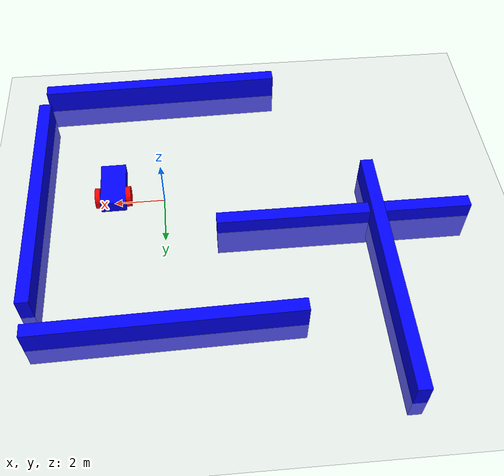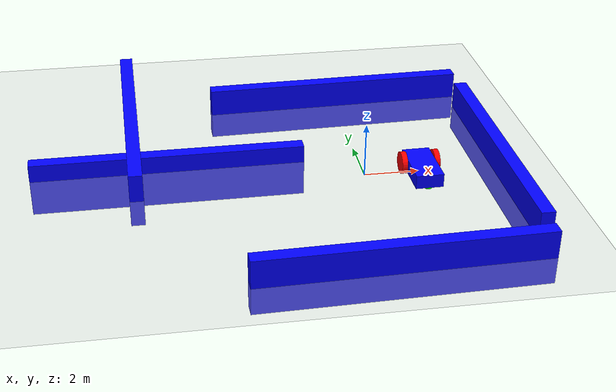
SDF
<sdf version="1.10">
 <world name="Moving_robot">
  <physics name="1ms" type="ignored">
   <max_step_size>0.001</max_step_size>
   <real_time_factor>1</real_time_factor>
   <real_time_update_rate>1000</real_time_update_rate>
  </physics>
  <plugin name="gz::sim::systems::Physics" filename="gz-sim-physics-system"/>
  <plugin name="gz::sim::systems::UserCommands" filename="gz-sim-user-commands-system"/>
  <plugin name="gz::sim::systems::SceneBroadcaster" filename="gz-sim-scene-broadcaster-system"/>
  <plugin name="gz::sim::systems::Imu" filename="gz-sim-imu-system"/>
  <plugin name="gz::sim::systems::Sensors" filename="gz-sim-sensors-system">
   <render_engine>ogre2</render_engine>
  </plugin>
  <plugin name="gz::sim::systems::TriggeredPublisher" filename="gz-sim-triggered-publisher-system">
   <input type="gz.msgs.Int32" topic="/keyboard/keypress"><match field="data">16777234</match></input>
   <output type="gz.msgs.Twist" topic="/cmd_vel">linear: {x: 0.0}, angular: {z: 0.5}</output>
  </plugin>
  <plugin name="gz::sim::systems::TriggeredPublisher" filename="gz-sim-triggered-publisher-system">
   <input type="gz.msgs.Int32" topic="/keyboard/keypress"><match field="data">16777235</match></input>
   <output type="gz.msgs.Twist" topic="/cmd_vel">linear: {x: 0.5}, angular: {z: 0.0}</output>
  </plugin>
  <plugin name="gz::sim::systems::TriggeredPublisher" filename="gz-sim-triggered-publisher-system">
   <input type="gz.msgs.Int32" topic="/keyboard/keypress"><match field="data">16777236</match></input>
   <output type="gz.msgs.Twist" topic="/cmd_vel">linear: {x: 0.0}, angular: {z: -0.5}</output>
  </plugin>
  <plugin name="gz::sim::systems::TriggeredPublisher" filename="gz-sim-triggered-publisher-system">
   <input type="gz.msgs.Int32" topic="/keyboard/keypress"><match field="data">16777237</match></input>
   <output type="gz.msgs.Twist" topic="/cmd_vel">linear: {x: -0.5}, angular: {z: 0.0}</output>
  </plugin>
  <gravity>0 0 -9.8000000000000007</gravity>
  <magnetic_field>5.5644999999999998e-06 2.2875799999999999e-05 -4.2388400000000002e-05</magnetic_field>
  <atmosphere type="adiabatic"/>
  <scene>
   <ambient>0.400000006 0.400000006 0.400000006 1</ambient>
   <background>0.699999988 0.699999988 0.699999988 1</background>
   <shadows>true</shadows>
  </scene>
  <model name="ground_plane">
   <static>true</static>
   <link name="link">
    <collision name="collision">
     <geometry><plane><normal>0 0 1</normal><size>1 1</size></plane></geometry>
    </collision>
    <visual name="visual">
     <geometry><plane><normal>0 0 1</normal><size>100 100</size></plane></geometry>
     <material>
      <ambient>0.800000012 0.800000012 0.800000012 1</ambient>
      <diffuse>0.800000012 0.800000012 0.800000012 1</diffuse>
      <specular>0.800000012 0.800000012 0.800000012 1</specular>
     </material>
    </visual>
    <inertial>
     <mass>1</mass>
     <inertia><ixx>1</ixx><ixy>0</ixy><ixz>0</ixz><iyy>1</iyy><iyz>0</iyz><izz>1</izz></inertia>
    </inertial>
   </link>
  </model>
  <model name="wall">
   <static>true</static>
   <pose>5 0 0 0 0 0</pose>
   <link name="box">
    <visual name="visual">
     <geometry><box><size>0.5 10 2</size></box></geometry>
     <material><ambient>0 0 1 1</ambient><diffuse>0 0 1 1</diffuse><specular>0 0 1 1</specular></material>
    </visual>
    <collision name="collision"><geometry><box><size>0.5 10 2</size></box></geometry></collision>
    <inertial>
     <mass>1</mass>
     <inertia><ixx>1</ixx><ixy>0</ixy><ixz>0</ixz><iyy>1</iyy><iyz>0</iyz><izz>1</izz></inertia>
    </inertial>
   </link>
  </model>
  <model name="wall5">
   <static>true</static>
   <pose>-8.2442197799682617 4.3869099617004395 0 0 0 0</pose>
   <link name="box">
    <visual name="visual">
     <geometry><box><size>0.5 10 2</size></box></geometry>
     <material><ambient>0 0 1 1</ambient><diffuse>0 0 1 1</diffuse><specular>0 0 1 1</specular></material>
    </visual>
    <collision name="collision"><geometry><box><size>0.5 10 2</size></box></geometry></collision>
    <inertial>
     <mass>1</mass>
     <inertia><ixx>1</ixx><ixy>0</ixy><ixz>0</ixz><iyy>1</iyy><iyz>0</iyz><izz>1</izz></inertia>
    </inertial>
   </link>
  </model>
  <model name="wall4">
   <static>true</static>
   <pose>-7.0035514831542969 1.5503436326980591 -0.36632499098777771 0 0 1.5731600067873759</pose>
   <link name="box">
    <visual name="visual">
     <geometry><box><size>0.5 10 2</size></box></geometry>
     <material><ambient>0 0 1 1</ambient><diffuse>0 0 1 1</diffuse><specular>0 0 1 1</specular></material>
    </visual>
    <collision name="collision"><geometry><box><size>0.5 10 2</size></box></geometry></collision>
    <inertial>
     <mass>1</mass>
     <inertia><ixx>1</ixx><ixy>0</ixy><ixz>0</ixz><iyy>1</iyy><iyz>0</iyz><izz>1</izz></inertia>
    </inertial>
   </link>
  </model>
  <model name="wall2">
   <static>true</static>
   <pose>0 -6 0 0 0 -1.5500000000000003</pose>
   <link name="box">
    <visual name="visual">
     <geometry><box><size>0.5 10 2</size></box></geometry>
     <material><ambient>0 0 1 1</ambient><diffuse>0 0 1 1</diffuse><specular>0 0 1 1</specular></material>
    </visual>
    <collision name="collision"><geometry><box><size>0.5 10 2</size></box></geometry></collision>
    <inertial>
     <mass>1</mass>
     <inertia><ixx>1</ixx><ixy>0</ixy><ixz>0</ixz><iyy>1</iyy><iyz>0</iyz><izz>1</izz></inertia>
    </inertial>
   </link>
  </model>
  <model name="wall3">
   <static>true</static>
   <pose>0 6 0 0 0 -1.5500000000000003</pose>
   <link name="box">
    <visual name="visual">
     <geometry><box><size>0.5 10 2</size></box></geometry>
     <material><ambient>0 0 1 1</ambient><diffuse>0 0 1 1</diffuse><specular>0 0 1 1</specular></material>
    </visual>
    <collision name="collision"><geometry><box><size>0.5 10 2</size></box></geometry></collision>
    <inertial>
     <mass>1</mass>
     <inertia><ixx>1</ixx><ixy>0</ixy><ixz>0</ixz><iyy>1</iyy><iyz>0</iyz><izz>1</izz></inertia>
    </inertial>
   </link>
  </model>
  <model name="vehicle_blue" canonical_link="chassis">
   <frame name="lidar_frame" attached_to="chassis"><pose>0.80000000000000004 0 0.5 0 0 0</pose></frame>
   <pose>2.0000000000000004 -1.1102230246251565e-16 0 0 0 -1.5600000000000009</pose>
   <link name="chassis">
    <sensor name="imu_sensor" type="imu">
     <topic>imu</topic>
     <update_rate>1</update_rate>
     <enable_metrics>false</enable_metrics>
     <imu>
      <orientation_reference_frame>
       <localization>CUSTOM</localization>
       <custom_rpy>0 0 0</custom_rpy>
       <grav_dir_x>1 0 0</grav_dir_x>
      </orientation_reference_frame>
      <angular_velocity>
       <x>
        <noise type="none">
         <mean>0</mean>
         <stddev>0</stddev>
         <bias_mean>0</bias_mean>
         <bias_stddev>0</bias_stddev>
         <dynamic_bias_stddev>0</dynamic_bias_stddev>
         <dynamic_bias_correlation_time>0</dynamic_bias_correlation_time>
         <precision>0</precision>
        </noise>
       </x>
       <y>
        <noise type="none">
         <mean>0</mean>
         <stddev>0</stddev>
         <bias_mean>0</bias_mean>
         <bias_stddev>0</bias_stddev>
         <dynamic_bias_stddev>0</dynamic_bias_stddev>
         <dynamic_bias_correlation_time>0</dynamic_bias_correlation_time>
         <precision>0</precision>
        </noise>
       </y>
       <z>
        <noise type="none">
         <mean>0</mean>
         <stddev>0</stddev>
         <bias_mean>0</bias_mean>
         <bias_stddev>0</bias_stddev>
         <dynamic_bias_stddev>0</dynamic_bias_stddev>
         <dynamic_bias_correlation_time>0</dynamic_bias_correlation_time>
         <precision>0</precision>
        </noise>
       </z>
      </angular_velocity>
      <linear_acceleration>
       <x>
        <noise type="none">
         <mean>0</mean>
         <stddev>0</stddev>
         <bias_mean>0</bias_mean>
         <bias_stddev>0</bias_stddev>
         <dynamic_bias_stddev>0</dynamic_bias_stddev>
         <dynamic_bias_correlation_time>0</dynamic_bias_correlation_time>
         <precision>0</precision>
        </noise>
       </x>
       <y>
        <noise type="none">
         <mean>0</mean>
         <stddev>0</stddev>
         <bias_mean>0</bias_mean>
         <bias_stddev>0</bias_stddev>
         <dynamic_bias_stddev>0</dynamic_bias_stddev>
         <dynamic_bias_correlation_time>0</dynamic_bias_correlation_time>
         <precision>0</precision>
        </noise>
       </y>
       <z>
        <noise type="none">
         <mean>0</mean>
         <stddev>0</stddev>
         <bias_mean>0</bias_mean>
         <bias_stddev>0</bias_stddev>
         <dynamic_bias_stddev>0</dynamic_bias_stddev>
         <dynamic_bias_correlation_time>0</dynamic_bias_correlation_time>
         <precision>0</precision>
        </noise>
       </z>
      </linear_acceleration>
      <enable_orientation>true</enable_orientation>
     </imu>
    </sensor>
    <sensor name="gpu_lidar" type="gpu_lidar">
     <pose>0.80000000000000004 0 0.5 0 0 0</pose>
     <topic>lidar</topic>
     <update_rate>10</update_rate>
     <enable_metrics>false</enable_metrics>
     <lidar>
      <scan>
       <horizontal>
        <samples>640</samples>
        <resolution>1</resolution>
        <min_angle>-1.396263</min_angle>
        <max_angle>1.396263</max_angle>
       </horizontal>
       <vertical>
        <samples>1</samples>
        <min_angle>0</min_angle>
        <max_angle>0</max_angle>
        <resolution>0.01</resolution>
       </vertical>
      </scan>
      <range><min>0.080000000000000002</min><max>10</max><resolution>0.01</resolution></range>
      <noise><type>none</type><mean>0</mean><stddev>0</stddev></noise>
      <visibility_mask>4294967295</visibility_mask>
     </lidar>
    </sensor>
    <pose>0.5 0 0.40000000000000002 0 0 0</pose>
    <inertial>
     <mass>1.14395</mass>
     <inertia>
      <ixx>0.126164</ixx>
      <ixy>0</ixy>
      <ixz>0</ixz>
      <iyy>0.41651899999999997</iyy>
      <iyz>0</iyz>
      <izz>0.481014</izz>
     </inertia>
    </inertial>
    <visual name="visual">
     <geometry><box><size>2 1 0.5</size></box></geometry>
     <material><ambient>0 0 1 1</ambient><diffuse>0 0 1 1</diffuse><specular>0 0 1 1</specular></material>
    </visual>
    <collision name="collision"><geometry><box><size>2 1 0.5</size></box></geometry></collision>
   </link>
   <link name="left_wheel">
    <pose>-4.4408920985006262e-16 0.59999999999999964 0.40000000000000002 -1.5707000000000002 7.8505379053005567e-16 -1.5697143519272498e-16</pose>
    <inertial>
     <mass>2</mass>
     <inertia>
      <ixx>0.14583299999999999</ixx>
      <ixy>0</ixy>
      <ixz>0</ixz>
      <iyy>0.14583299999999999</iyy>
      <iyz>0</iyz>
      <izz>0.125</izz>
     </inertia>
    </inertial>
    <visual name="visual">
     <geometry>
      <cylinder><radius>0.40000000000000002</radius><length>0.20000000000000001</length></cylinder>
     </geometry>
     <material><ambient>1 0 0 1</ambient><diffuse>1 0 0 1</diffuse><specular>1 0 0 1</specular></material>
    </visual>
    <collision name="collision">
     <geometry>
      <cylinder><radius>0.40000000000000002</radius><length>0.20000000000000001</length></cylinder>
     </geometry>
    </collision>
   </link>
   <link name="right_wheel">
    <pose>3.3306690738754696e-16 -0.60000000000000053 0.40000000000000002 -1.5707000000000002 7.8505379053005567e-16 -1.5697143519272498e-16</pose>
    <inertial>
     <mass>1</mass>
     <inertia>
      <ixx>0.14583299999999999</ixx>
      <ixy>0</ixy>
      <ixz>0</ixz>
      <iyy>0.14583299999999999</iyy>
      <iyz>0</iyz>
      <izz>0.125</izz>
     </inertia>
    </inertial>
    <visual name="visual">
     <geometry>
      <cylinder><radius>0.40000000000000002</radius><length>0.20000000000000001</length></cylinder>
     </geometry>
     <material><ambient>1 0 0 1</ambient><diffuse>1 0 0 1</diffuse><specular>1 0 0 1</specular></material>
    </visual>
    <collision name="collision">
     <geometry>
      <cylinder><radius>0.40000000000000002</radius><length>0.20000000000000001</length></cylinder>
     </geometry>
    </collision>
   </link>
   <frame name="caster_frame" attached_to="chassis">
    <pose>0.80000000000000004 0 -0.20000000000000001 0 0 0</pose>
   </frame>
   <link name="caster">
    <pose>1.3000000000000005 4.4408920985006262e-16 0.20000000000000001 0 0 0</pose>
    <inertial>
     <mass>1</mass>
     <inertia>
      <ixx>0.10000000000000001</ixx>
      <ixy>0</ixy>
      <ixz>0</ixz>
      <iyy>0.10000000000000001</iyy>
      <iyz>0</iyz>
      <izz>0.10000000000000001</izz>
     </inertia>
    </inertial>
    <visual name="visual">
     <geometry><sphere><radius>0.20000000000000001</radius></sphere></geometry>
     <material><ambient>0 1 0 1</ambient><diffuse>0 1 0 1</diffuse><specular>0 1 0 1</specular></material>
    </visual>
    <collision name="collision">
     <geometry><sphere><radius>0.20000000000000001</radius></sphere></geometry>
    </collision>
   </link>
   <joint name="left_wheel_joint" type="revolute">
    <pose>1.9721522630525295e-31 -4.9960036108132044e-16 -1.1102230246251565e-16 -1.2154326714572542e-63 9.8607613152626476e-32 -2.4651903288156619e-32</pose>
    <parent>chassis</parent>
    <child>left_wheel</child>
    <axis>
     <xyz>9.8609987333971959e-32 9.6326794747692026e-05 0.99999999536057438</xyz>
     <limit>
      <lower>-1.7976900000000001e+308</lower>
      <upper>1.7976900000000001e+308</upper>
      <effort>inf</effort>
      <velocity>inf</velocity>
      <stiffness>100000000</stiffness>
      <dissipation>1</dissipation>
     </limit>
     <dynamics>
      <spring_reference>0</spring_reference>
      <spring_stiffness>0</spring_stiffness>
      <damping>0</damping>
      <friction>0</friction>
     </dynamics>
    </axis>
   </joint>
   <joint name="right_wheel_joint" type="revolute">
    <pose>-4.9303806576313238e-32 2.7755575615628914e-16 -2.2204460492503131e-16 -1.2154326714572542e-63 9.8607613152626476e-32 -2.4651903288156619e-32</pose>
    <parent>chassis</parent>
    <child>right_wheel</child>
    <axis>
     <xyz>9.8609987333971959e-32 9.6326794747692026e-05 0.99999999536057438</xyz>
     <limit>
      <lower>-1.7976900000000001e+308</lower>
      <upper>1.7976900000000001e+308</upper>
      <effort>inf</effort>
      <velocity>inf</velocity>
      <stiffness>100000000</stiffness>
      <dissipation>1</dissipation>
     </limit>
     <dynamics>
      <spring_reference>0</spring_reference>
      <spring_stiffness>0</spring_stiffness>
      <damping>0</damping>
      <friction>0</friction>
     </dynamics>
    </axis>
   </joint>
   <joint name="caster_wheel" type="ball"><parent>chassis</parent><child>caster</child></joint>
   <plugin name="gz::sim::systems::DiffDrive" filename="gz-sim-diff-drive-system">
    <left_joint>left_wheel_joint</left_joint>
    <right_joint>right_wheel_joint</right_joint>
    <wheel_separation>1.2</wheel_separation>
    <wheel_radius>0.4</wheel_radius>
    <odom_publish_frequency>1</odom_publish_frequency>
    <topic>cmd_vel</topic>
   </plugin>
   <static>false</static>
  </model>
  <light name="sun" type="directional">
   <pose>0 0 10 0 0 0</pose>
   <intensity>1</intensity>
   <direction>-0.5 0.10000000000000001 -0.90000000000000002</direction>
   <diffuse>0.800000012 0.800000012 0.800000012 1</diffuse>
   <specular>0.200000003 0.200000003 0.200000003 1</specular>
   <attenuation>
    <range>1000</range>
    <linear>0.01</linear>
    <constant>0.90000000000000002</constant>
    <quadratic>0.001</quadratic>
   </attenuation>
   <spot><inner_angle>0</inner_angle><outer_angle>0</outer_angle><falloff>0</falloff></spot>
  </light>
 </world>
</sdf>
